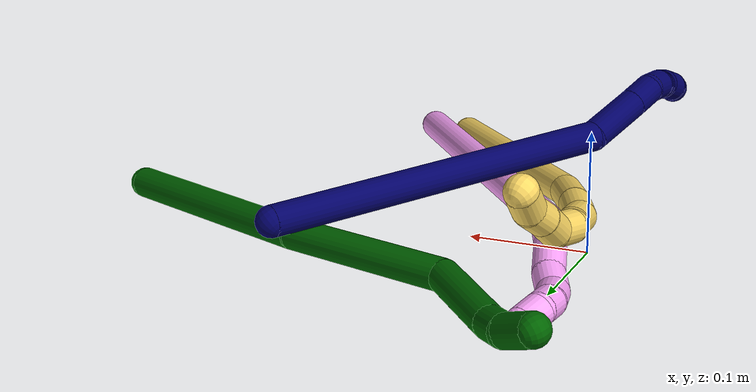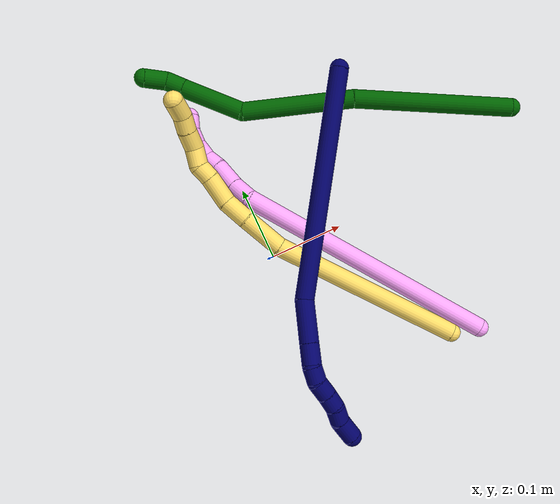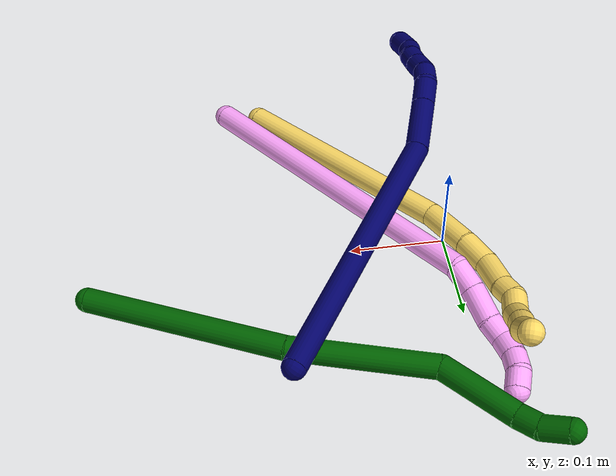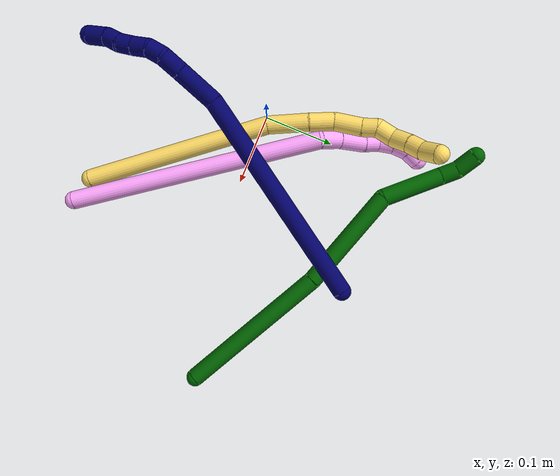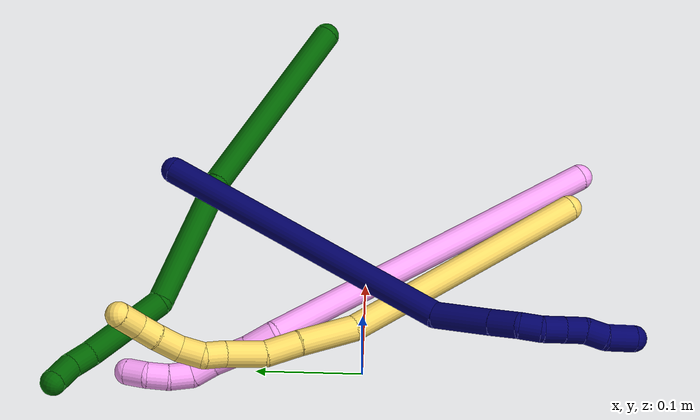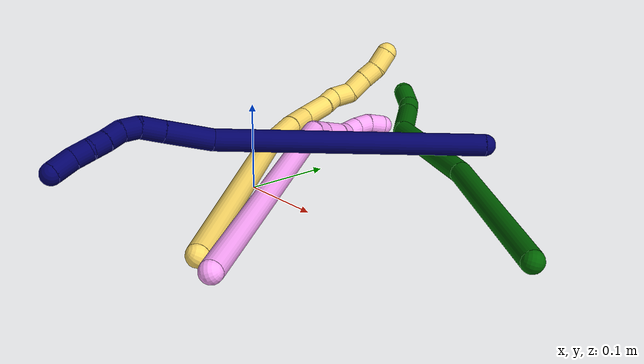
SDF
<sdf version="1.7">
 <world name="default">
  <model name="photoneo_s_sensor">
   <static>1</static>
   <pose>0 0 2 1.57079 1.57079 3.14159</pose>
   <link name="link">
    <inertial><mass>0.1</mass></inertial>
    <sensor name="sensor" type="depth">
     <update_rate>30</update_rate>
     <camera>
      <horizontal_fov>1.22</horizontal_fov>
      <image><width>1920</width><height>1200</height><format>B8G8R8</format></image>
      <clip><near>0.1</near><far>4</far></clip>
      <depth_camera><output>points</output></depth_camera>
     </camera>
     <plugin name="camera_plugin" filename="libgazebo_ros_depth_camera.so">
      <baseline>0.2</baseline>
      <alwaysOn>1</alwaysOn>
      <updateRate>0.0</updateRate>
      <cameraName>camera_ir</cameraName>
      <imageTopicName>/camera/color/image_raw</imageTopicName>
      <cameraInfoTopicName>/camera/color/camera_info</cameraInfoTopicName>
      <depthImageTopicName>/camera/depth/image_raw</depthImageTopicName>
      <depthImageCameraInfoTopicName>/camera/depth/camera_info</depthImageCameraInfoTopicName>
      <pointCloudTopicName>/camera/depth/points</pointCloudTopicName>
      <frameName>fr_optical</frameName>
      <pointCloudCutoff>0.1</pointCloudCutoff>
      <pointCloudCutoffMax>2.0</pointCloudCutoffMax>
      <distortionK1>0</distortionK1>
      <distortionK2>0</distortionK2>
      <distortionK3>0</distortionK3>
      <distortionT1>0</distortionT1>
      <distortionT2>0</distortionT2>
      <CxPrime>0</CxPrime>
      <Cx>0</Cx>
      <Cy>0</Cy>
      <focalLength>0</focalLength>
      <hackBaseline>0</hackBaseline>
     </plugin>
    </sensor>
   </link>
  </model>
  <model name="bin">
   <static>1</static>
   <link name="bottom">
    <collision name="collision-bottom">
     <pose>0 0 -0.01 0 -0 0</pose>
     <geometry><box><size>0.8 0.6 0.02</size></box></geometry>
     <surface>
      <friction><ode><mu>100</mu><mu2>100</mu2></ode></friction>
      <contact><collide_bitmask>65535</collide_bitmask></contact>
     </surface>
    </collision>
   </link>
   <link name="west_wall">
    <collision name="collision-west_wall">
     <pose>-0.41 0 0.1 0 -0 0</pose>
     <geometry><box><size>0.02 0.6 0.2</size></box></geometry>
     <surface>
      <friction><ode><mu>100</mu><mu2>100</mu2></ode></friction>
      <contact><collide_bitmask>65535</collide_bitmask></contact>
     </surface>
    </collision>
   </link>
   <link name="east_wall">
    <collision name="collision-east_wall">
     <pose>0.41 0 0.1 0 -0 0</pose>
     <geometry><box><size>0.02 0.6 0.2</size></box></geometry>
     <surface>
      <friction><ode><mu>100</mu><mu2>100</mu2></ode></friction>
      <contact><collide_bitmask>65535</collide_bitmask></contact>
     </surface>
    </collision>
   </link>
   <link name="south_wall">
    <collision name="collision-south_wall">
     <pose>0 -0.31 0.1 0 -0 0</pose>
     <geometry><box><size>0.8 0.02 0.2</size></box></geometry>
     <surface>
      <friction><ode><mu>100</mu><mu2>100</mu2></ode></friction>
      <contact><collide_bitmask>65535</collide_bitmask></contact>
     </surface>
    </collision>
   </link>
   <link name="north_wall">
    <collision name="collision-north_wall">
     <pose>0 0.31 0.1 0 -0 0</pose>
     <geometry><box><size>0.8 0.02 0.2</size></box></geometry>
     <surface>
      <friction><ode><mu>100</mu><mu2>100</mu2></ode></friction>
      <contact><collide_bitmask>65535</collide_bitmask></contact>
     </surface>
    </collision>
   </link>
  </model>
  <model name="4">
   <static>0</static>
   <link name="4">
    <collision name="collision-cylinder-e_1_1_4">
     <pose>-0.054827 0.166157 0.01275 -1.49421 -0.317851 0.294747</pose>
     <geometry><cylinder><radius>0.0125</radius><length>0.350865</length></cylinder></geometry>
     <surface>
      <friction><ode><mu>1.16</mu><mu2>1.16</mu2><slip1>0</slip1><slip2>0</slip2></ode></friction>
      <contact><ode><kp>1e+06</kp><kd>1</kd><max_vel>0</max_vel><min_depth>0.001</min_depth></ode></contact>
     </surface>
    </collision>
    <visual name="visual-cylinder-e_1_1_4">
     <pose>-0.054827 0.166157 0.01275 -1.49421 -0.317851 0.294747</pose>
     <geometry><cylinder><radius>0.0125</radius><length>0.350865</length></cylinder></geometry>
     <material><ambient>1 0.65098 0.996078 1</ambient></material>
    </visual>
    <collision name="collision-cylinder-e_2_4_5">
     <pose>-0.119314 0.342632 0.026192 -1.50378 -0.75132 0.706659</pose>
     <geometry><cylinder><radius>0.0125</radius><length>0.028303</length></cylinder></geometry>
     <surface>
      <friction><ode><mu>1.16</mu><mu2>1.16</mu2><slip1>0</slip1><slip2>0</slip2></ode></friction>
      <contact><ode><kp>1e+06</kp><kd>1</kd><max_vel>0</max_vel><min_depth>0.001</min_depth></ode></contact>
     </surface>
    </collision>
    <visual name="visual-cylinder-e_2_4_5">
     <pose>-0.119314 0.342632 0.026192 -1.50378 -0.75132 0.706659</pose>
     <geometry><cylinder><radius>0.0125</radius><length>0.028303</length></cylinder></geometry>
     <material><ambient>1 0.65098 0.996078 1</ambient></material>
    </visual>
    <collision name="collision-cylinder-e_3_5_6">
     <pose>-0.141827 0.365584 0.025256 -1.69898 -0.78986 0.885265</pose>
     <geometry><cylinder><radius>0.0125</radius><length>0.036192</length></cylinder></geometry>
     <surface>
      <friction><ode><mu>1.16</mu><mu2>1.16</mu2><slip1>0</slip1><slip2>0</slip2></ode></friction>
      <contact><ode><kp>1e+06</kp><kd>1</kd><max_vel>0</max_vel><min_depth>0.001</min_depth></ode></contact>
     </surface>
    </collision>
    <visual name="visual-cylinder-e_3_5_6">
     <pose>-0.141827 0.365584 0.025256 -1.69898 -0.78986 0.885265</pose>
     <geometry><cylinder><radius>0.0125</radius><length>0.036192</length></cylinder></geometry>
     <material><ambient>1 0.65098 0.996078 1</ambient></material>
    </visual>
    <collision name="collision-cylinder-e_4_6_7">
     <pose>-0.161712 0.386736 0.024265 -1.4961 -0.688771 0.642612</pose>
     <geometry><cylinder><radius>0.0125</radius><length>0.022127</length></cylinder></geometry>
     <surface>
      <friction><ode><mu>1.16</mu><mu2>1.16</mu2><slip1>0</slip1><slip2>0</slip2></ode></friction>
      <contact><ode><kp>1e+06</kp><kd>1</kd><max_vel>0</max_vel><min_depth>0.001</min_depth></ode></contact>
     </surface>
    </collision>
    <visual name="visual-cylinder-e_4_6_7">
     <pose>-0.161712 0.386736 0.024265 -1.4961 -0.688771 0.642612</pose>
     <geometry><cylinder><radius>0.0125</radius><length>0.022127</length></cylinder></geometry>
     <material><ambient>1 0.65098 0.996078 1</ambient></material>
    </visual>
    <collision name="collision-cylinder-e_5_7_8">
     <pose>-0.173424 0.404753 0.02148 -1.91657 -0.434087 0.608196</pose>
     <geometry><cylinder><radius>0.0125</radius><length>0.022258</length></cylinder></geometry>
     <surface>
      <friction><ode><mu>1.16</mu><mu2>1.16</mu2><slip1>0</slip1><slip2>0</slip2></ode></friction>
      <contact><ode><kp>1e+06</kp><kd>1</kd><max_vel>0</max_vel><min_depth>0.001</min_depth></ode></contact>
     </surface>
    </collision>
    <visual name="visual-cylinder-e_5_7_8">
     <pose>-0.173424 0.404753 0.02148 -1.91657 -0.434087 0.608196</pose>
     <geometry><cylinder><radius>0.0125</radius><length>0.022258</length></cylinder></geometry>
     <material><ambient>1 0.65098 0.996078 1</ambient></material>
    </visual>
    <collision name="collision-cylinder-e_6_8_9">
     <pose>-0.182752 0.421529 0.012871 -2.19004 -0.479521 0.886003</pose>
     <geometry><cylinder><radius>0.0125</radius><length>0.020145</length></cylinder></geometry>
     <surface>
      <friction><ode><mu>1.16</mu><mu2>1.16</mu2><slip1>0</slip1><slip2>0</slip2></ode></friction>
      <contact><ode><kp>1e+06</kp><kd>1</kd><max_vel>0</max_vel><min_depth>0.001</min_depth></ode></contact>
     </surface>
    </collision>
    <visual name="visual-cylinder-e_6_8_9">
     <pose>-0.182752 0.421529 0.012871 -2.19004 -0.479521 0.886003</pose>
     <geometry><cylinder><radius>0.0125</radius><length>0.020145</length></cylinder></geometry>
     <material><ambient>1 0.65098 0.996078 1</ambient></material>
    </visual>
    <collision name="collision-cylinder-e_7_9_2">
     <pose>-0.194313 0.432943 0.001669 -2.53924 -0.75828 1.81717</pose>
     <geometry><cylinder><radius>0.0125</radius><length>0.020109</length></cylinder></geometry>
     <surface>
      <friction><ode><mu>1.16</mu><mu2>1.16</mu2><slip1>0</slip1><slip2>0</slip2></ode></friction>
      <contact><ode><kp>1e+06</kp><kd>1</kd><max_vel>0</max_vel><min_depth>0.001</min_depth></ode></contact>
     </surface>
    </collision>
    <visual name="visual-cylinder-e_7_9_2">
     <pose>-0.194313 0.432943 0.001669 -2.53924 -0.75828 1.81717</pose>
     <geometry><cylinder><radius>0.0125</radius><length>0.020109</length></cylinder></geometry>
     <material><ambient>1 0.65098 0.996078 1</ambient></material>
    </visual>
    <collision name="collision-sphere-2">
     <pose>-0.201227 0.437079 -0.004346 0 -0 0</pose>
     <geometry><sphere><radius>0.0125</radius></sphere></geometry>
     <surface>
      <friction><ode><mu>1.16</mu><mu2>1.16</mu2><slip1>0</slip1><slip2>0</slip2></ode></friction>
      <contact><ode><kp>1e+06</kp><kd>1</kd><max_vel>0</max_vel><min_depth>0.001</min_depth></ode></contact>
     </surface>
    </collision>
    <visual name="visual-sphere-2">
     <pose>-0.201227 0.437079 -0.004346 0 -0 0</pose>
     <geometry><sphere><radius>0.0125</radius></sphere></geometry>
     <material><ambient>1 0.65098 0.996078 1</ambient></material>
    </visual>
    <collision name="collision-sphere-9">
     <pose>-0.187399 0.428807 0.007684 0 -0 0</pose>
     <geometry><sphere><radius>0.0125</radius></sphere></geometry>
     <surface>
      <friction><ode><mu>1.16</mu><mu2>1.16</mu2><slip1>0</slip1><slip2>0</slip2></ode></friction>
      <contact><ode><kp>1e+06</kp><kd>1</kd><max_vel>0</max_vel><min_depth>0.001</min_depth></ode></contact>
     </surface>
    </collision>
    <visual name="visual-sphere-9">
     <pose>-0.187399 0.428807 0.007684 0 -0 0</pose>
     <geometry><sphere><radius>0.0125</radius></sphere></geometry>
     <material><ambient>1 0.65098 0.996078 1</ambient></material>
    </visual>
    <collision name="collision-sphere-4">
     <pose>-0.109654 0.332313 0.025499 0 -0 0</pose>
     <geometry><sphere><radius>0.0125</radius></sphere></geometry>
     <surface>
      <friction><ode><mu>1.16</mu><mu2>1.16</mu2><slip1>0</slip1><slip2>0</slip2></ode></friction>
      <contact><ode><kp>1e+06</kp><kd>1</kd><max_vel>0</max_vel><min_depth>0.001</min_depth></ode></contact>
     </surface>
    </collision>
    <visual name="visual-sphere-4">
     <pose>-0.109654 0.332313 0.025499 0 -0 0</pose>
     <geometry><sphere><radius>0.0125</radius></sphere></geometry>
     <material><ambient>1 0.65098 0.996078 1</ambient></material>
    </visual>
    <collision name="collision-sphere-1">
     <geometry><sphere><radius>0.0125</radius></sphere></geometry>
     <surface>
      <friction><ode><mu>1.16</mu><mu2>1.16</mu2><slip1>0</slip1><slip2>0</slip2></ode></friction>
      <contact><ode><kp>1e+06</kp><kd>1</kd><max_vel>0</max_vel><min_depth>0.001</min_depth></ode></contact>
     </surface>
    </collision>
    <visual name="visual-sphere-1">
     <geometry><sphere><radius>0.0125</radius></sphere></geometry>
     <material><ambient>1 0.65098 0.996078 1</ambient></material>
    </visual>
    <collision name="collision-sphere-8">
     <pose>-0.178105 0.414252 0.018058 0 -0 0</pose>
     <geometry><sphere><radius>0.0125</radius></sphere></geometry>
     <surface>
      <friction><ode><mu>1.16</mu><mu2>1.16</mu2><slip1>0</slip1><slip2>0</slip2></ode></friction>
      <contact><ode><kp>1e+06</kp><kd>1</kd><max_vel>0</max_vel><min_depth>0.001</min_depth></ode></contact>
     </surface>
    </collision>
    <visual name="visual-sphere-8">
     <pose>-0.178105 0.414252 0.018058 0 -0 0</pose>
     <geometry><sphere><radius>0.0125</radius></sphere></geometry>
     <material><ambient>1 0.65098 0.996078 1</ambient></material>
    </visual>
    <collision name="collision-sphere-5">
     <pose>-0.128974 0.35295 0.026884 0 -0 0</pose>
     <geometry><sphere><radius>0.0125</radius></sphere></geometry>
     <surface>
      <friction><ode><mu>1.16</mu><mu2>1.16</mu2><slip1>0</slip1><slip2>0</slip2></ode></friction>
      <contact><ode><kp>1e+06</kp><kd>1</kd><max_vel>0</max_vel><min_depth>0.001</min_depth></ode></contact>
     </surface>
    </collision>
    <visual name="visual-sphere-5">
     <pose>-0.128974 0.35295 0.026884 0 -0 0</pose>
     <geometry><sphere><radius>0.0125</radius></sphere></geometry>
     <material><ambient>1 0.65098 0.996078 1</ambient></material>
    </visual>
    <collision name="collision-sphere-6">
     <pose>-0.15468 0.378219 0.023628 0 -0 0</pose>
     <geometry><sphere><radius>0.0125</radius></sphere></geometry>
     <surface>
      <friction><ode><mu>1.16</mu><mu2>1.16</mu2><slip1>0</slip1><slip2>0</slip2></ode></friction>
      <contact><ode><kp>1e+06</kp><kd>1</kd><max_vel>0</max_vel><min_depth>0.001</min_depth></ode></contact>
     </surface>
    </collision>
    <visual name="visual-sphere-6">
     <pose>-0.15468 0.378219 0.023628 0 -0 0</pose>
     <geometry><sphere><radius>0.0125</radius></sphere></geometry>
     <material><ambient>1 0.65098 0.996078 1</ambient></material>
    </visual>
    <collision name="collision-sphere-7">
     <pose>-0.168744 0.395254 0.024902 0 -0 0</pose>
     <geometry><sphere><radius>0.0125</radius></sphere></geometry>
     <surface>
      <friction><ode><mu>1.16</mu><mu2>1.16</mu2><slip1>0</slip1><slip2>0</slip2></ode></friction>
      <contact><ode><kp>1e+06</kp><kd>1</kd><max_vel>0</max_vel><min_depth>0.001</min_depth></ode></contact>
     </surface>
    </collision>
    <visual name="visual-sphere-7">
     <pose>-0.168744 0.395254 0.024902 0 -0 0</pose>
     <geometry><sphere><radius>0.0125</radius></sphere></geometry>
     <material><ambient>1 0.65098 0.996078 1</ambient></material>
    </visual>
    <inertial>
     <pose>-0.085549 0.231983 0.014873 0 -0 0</pose>
     <mass>0.5</mass>
     <inertia>
      <ixx>0.004281</ixx>
      <ixy>0</ixy>
      <ixz>0</ixz>
      <iyy>0.001636</iyy>
      <iyz>0</iyz>
      <izz>-0.002294</izz>
     </inertia>
    </inertial>
   </link>
   <pose>0.2126 -0.202061 0.029559 2.31997 -1.0227 -1.7227</pose>
  </model>
  <model name="5">
   <static>0</static>
   <link name="5">
    <collision name="collision-cylinder-e_1_1_4">
     <pose>-0.063066 0.097629 0.054524 -1.06146 -0.513518 0.305781</pose>
     <geometry><cylinder><radius>0.0125</radius><length>0.256761</length></cylinder></geometry>
     <surface>
      <friction><ode><mu>1.16</mu><mu2>1.16</mu2><slip1>0</slip1><slip2>0</slip2></ode></friction>
      <contact><ode><kp>1e+06</kp><kd>1</kd><max_vel>0</max_vel><min_depth>0.001</min_depth></ode></contact>
     </surface>
    </collision>
    <visual name="visual-cylinder-e_1_1_4">
     <pose>-0.063066 0.097629 0.054524 -1.06146 -0.513518 0.305781</pose>
     <geometry><cylinder><radius>0.0125</radius><length>0.256761</length></cylinder></geometry>
     <material><ambient>1 0.858824 0.4 1</ambient></material>
    </visual>
    <collision name="collision-cylinder-e_2_4_5">
     <pose>-0.142777 0.211762 0.124593 -0.815349 -0.633254 0.281137</pose>
     <geometry><cylinder><radius>0.0125</radius><length>0.056252</length></cylinder></geometry>
     <surface>
      <friction><ode><mu>1.16</mu><mu2>1.16</mu2><slip1>0</slip1><slip2>0</slip2></ode></friction>
      <contact><ode><kp>1e+06</kp><kd>1</kd><max_vel>0</max_vel><min_depth>0.001</min_depth></ode></contact>
     </surface>
    </collision>
    <visual name="visual-cylinder-e_2_4_5">
     <pose>-0.142777 0.211762 0.124593 -0.815349 -0.633254 0.281137</pose>
     <geometry><cylinder><radius>0.0125</radius><length>0.056252</length></cylinder></geometry>
     <material><ambient>1 0.858824 0.4 1</ambient></material>
    </visual>
    <collision name="collision-cylinder-e_3_5_6">
     <pose>-0.168007 0.238383 0.150657 -0.76586 -0.531795 0.218536</pose>
     <geometry><cylinder><radius>0.0125</radius><length>0.033864</length></cylinder></geometry>
     <surface>
      <friction><ode><mu>1.16</mu><mu2>1.16</mu2><slip1>0</slip1><slip2>0</slip2></ode></friction>
      <contact><ode><kp>1e+06</kp><kd>1</kd><max_vel>0</max_vel><min_depth>0.001</min_depth></ode></contact>
     </surface>
    </collision>
    <visual name="visual-cylinder-e_3_5_6">
     <pose>-0.168007 0.238383 0.150657 -0.76586 -0.531795 0.218536</pose>
     <geometry><cylinder><radius>0.0125</radius><length>0.033864</length></cylinder></geometry>
     <material><ambient>1 0.858824 0.4 1</ambient></material>
    </visual>
    <collision name="collision-cylinder-e_4_6_7">
     <pose>-0.189242 0.254898 0.173854 -0.467475 -0.727643 0.180821</pose>
     <geometry><cylinder><radius>0.0125</radius><length>0.038037</length></cylinder></geometry>
     <surface>
      <friction><ode><mu>1.16</mu><mu2>1.16</mu2><slip1>0</slip1><slip2>0</slip2></ode></friction>
      <contact><ode><kp>1e+06</kp><kd>1</kd><max_vel>0</max_vel><min_depth>0.001</min_depth></ode></contact>
     </surface>
    </collision>
    <visual name="visual-cylinder-e_4_6_7">
     <pose>-0.189242 0.254898 0.173854 -0.467475 -0.727643 0.180821</pose>
     <geometry><cylinder><radius>0.0125</radius><length>0.038037</length></cylinder></geometry>
     <material><ambient>1 0.858824 0.4 1</ambient></material>
    </visual>
    <collision name="collision-cylinder-e_5_7_8">
     <pose>-0.208978 0.265912 0.192187 -0.684332 -0.770656 0.286947</pose>
     <geometry><cylinder><radius>0.0125</radius><length>0.020344</length></cylinder></geometry>
     <surface>
      <friction><ode><mu>1.16</mu><mu2>1.16</mu2><slip1>0</slip1><slip2>0</slip2></ode></friction>
      <contact><ode><kp>1e+06</kp><kd>1</kd><max_vel>0</max_vel><min_depth>0.001</min_depth></ode></contact>
     </surface>
    </collision>
    <visual name="visual-cylinder-e_5_7_8">
     <pose>-0.208978 0.265912 0.192187 -0.684332 -0.770656 0.286947</pose>
     <geometry><cylinder><radius>0.0125</radius><length>0.020344</length></cylinder></geometry>
     <material><ambient>1 0.858824 0.4 1</ambient></material>
    </visual>
    <collision name="collision-cylinder-e_6_8_9">
     <pose>-0.223391 0.270553 0.207158 -0.003028 -0.666433 0.001048</pose>
     <geometry><cylinder><radius>0.0125</radius><length>0.023706</length></cylinder></geometry>
     <surface>
      <friction><ode><mu>1.16</mu><mu2>1.16</mu2><slip1>0</slip1><slip2>0</slip2></ode></friction>
      <contact><ode><kp>1e+06</kp><kd>1</kd><max_vel>0</max_vel><min_depth>0.001</min_depth></ode></contact>
     </surface>
    </collision>
    <visual name="visual-cylinder-e_6_8_9">
     <pose>-0.223391 0.270553 0.207158 -0.003028 -0.666433 0.001048</pose>
     <geometry><cylinder><radius>0.0125</radius><length>0.023706</length></cylinder></geometry>
     <material><ambient>1 0.858824 0.4 1</ambient></material>
    </visual>
    <collision name="collision-cylinder-e_7_9_10">
     <pose>-0.24231 0.270718 0.221625 -0.02658 -1.15263 0.017275</pose>
     <geometry><cylinder><radius>0.0125</radius><length>0.02537</length></cylinder></geometry>
     <surface>
      <friction><ode><mu>1.16</mu><mu2>1.16</mu2><slip1>0</slip1><slip2>0</slip2></ode></friction>
      <contact><ode><kp>1e+06</kp><kd>1</kd><max_vel>0</max_vel><min_depth>0.001</min_depth></ode></contact>
     </surface>
    </collision>
    <visual name="visual-cylinder-e_7_9_10">
     <pose>-0.24231 0.270718 0.221625 -0.02658 -1.15263 0.017275</pose>
     <geometry><cylinder><radius>0.0125</radius><length>0.02537</length></cylinder></geometry>
     <material><ambient>1 0.858824 0.4 1</ambient></material>
    </visual>
    <collision name="collision-cylinder-e_8_10_11">
     <pose>-0.263174 0.269966 0.231587 0.182699 -1.08506 -0.11034</pose>
     <geometry><cylinder><radius>0.0125</radius><length>0.02097</length></cylinder></geometry>
     <surface>
      <friction><ode><mu>1.16</mu><mu2>1.16</mu2><slip1>0</slip1><slip2>0</slip2></ode></friction>
      <contact><ode><kp>1e+06</kp><kd>1</kd><max_vel>0</max_vel><min_depth>0.001</min_depth></ode></contact>
     </surface>
    </collision>
    <visual name="visual-cylinder-e_8_10_11">
     <pose>-0.263174 0.269966 0.231587 0.182699 -1.08506 -0.11034</pose>
     <geometry><cylinder><radius>0.0125</radius><length>0.02097</length></cylinder></geometry>
     <material><ambient>1 0.858824 0.4 1</ambient></material>
    </visual>
    <collision name="collision-cylinder-e_9_11_2">
     <pose>-0.28452 0.269574 0.23894 -0.193368 -1.3597 0.15649</pose>
     <geometry><cylinder><radius>0.0125</radius><length>0.024696</length></cylinder></geometry>
     <surface>
      <friction><ode><mu>1.16</mu><mu2>1.16</mu2><slip1>0</slip1><slip2>0</slip2></ode></friction>
      <contact><ode><kp>1e+06</kp><kd>1</kd><max_vel>0</max_vel><min_depth>0.001</min_depth></ode></contact>
     </surface>
    </collision>
    <visual name="visual-cylinder-e_9_11_2">
     <pose>-0.28452 0.269574 0.23894 -0.193368 -1.3597 0.15649</pose>
     <geometry><cylinder><radius>0.0125</radius><length>0.024696</length></cylinder></geometry>
     <material><ambient>1 0.858824 0.4 1</ambient></material>
    </visual>
    <collision name="collision-sphere-2">
     <pose>-0.296594 0.270071 0.241479 0 -0 0</pose>
     <geometry><sphere><radius>0.0125</radius></sphere></geometry>
     <surface>
      <friction><ode><mu>1.16</mu><mu2>1.16</mu2><slip1>0</slip1><slip2>0</slip2></ode></friction>
      <contact><ode><kp>1e+06</kp><kd>1</kd><max_vel>0</max_vel><min_depth>0.001</min_depth></ode></contact>
     </surface>
    </collision>
    <visual name="visual-sphere-2">
     <pose>-0.296594 0.270071 0.241479 0 -0 0</pose>
     <geometry><sphere><radius>0.0125</radius></sphere></geometry>
     <material><ambient>1 0.858824 0.4 1</ambient></material>
    </visual>
    <collision name="collision-sphere-11">
     <pose>-0.272446 0.269077 0.236401 0 -0 0</pose>
     <geometry><sphere><radius>0.0125</radius></sphere></geometry>
     <surface>
      <friction><ode><mu>1.16</mu><mu2>1.16</mu2><slip1>0</slip1><slip2>0</slip2></ode></friction>
      <contact><ode><kp>1e+06</kp><kd>1</kd><max_vel>0</max_vel><min_depth>0.001</min_depth></ode></contact>
     </surface>
    </collision>
    <visual name="visual-sphere-11">
     <pose>-0.272446 0.269077 0.236401 0 -0 0</pose>
     <geometry><sphere><radius>0.0125</radius></sphere></geometry>
     <material><ambient>1 0.858824 0.4 1</ambient></material>
    </visual>
    <collision name="collision-sphere-10">
     <pose>-0.253902 0.270855 0.226774 0 -0 0</pose>
     <geometry><sphere><radius>0.0125</radius></sphere></geometry>
     <surface>
      <friction><ode><mu>1.16</mu><mu2>1.16</mu2><slip1>0</slip1><slip2>0</slip2></ode></friction>
      <contact><ode><kp>1e+06</kp><kd>1</kd><max_vel>0</max_vel><min_depth>0.001</min_depth></ode></contact>
     </surface>
    </collision>
    <visual name="visual-sphere-10">
     <pose>-0.253902 0.270855 0.226774 0 -0 0</pose>
     <geometry><sphere><radius>0.0125</radius></sphere></geometry>
     <material><ambient>1 0.858824 0.4 1</ambient></material>
    </visual>
    <collision name="collision-sphere-9">
     <pose>-0.230718 0.270581 0.216475 0 -0 0</pose>
     <geometry><sphere><radius>0.0125</radius></sphere></geometry>
     <surface>
      <friction><ode><mu>1.16</mu><mu2>1.16</mu2><slip1>0</slip1><slip2>0</slip2></ode></friction>
      <contact><ode><kp>1e+06</kp><kd>1</kd><max_vel>0</max_vel><min_depth>0.001</min_depth></ode></contact>
     </surface>
    </collision>
    <visual name="visual-sphere-9">
     <pose>-0.230718 0.270581 0.216475 0 -0 0</pose>
     <geometry><sphere><radius>0.0125</radius></sphere></geometry>
     <material><ambient>1 0.858824 0.4 1</ambient></material>
    </visual>
    <collision name="collision-sphere-4">
     <pose>-0.126133 0.195257 0.109048 0 -0 0</pose>
     <geometry><sphere><radius>0.0125</radius></sphere></geometry>
     <surface>
      <friction><ode><mu>1.16</mu><mu2>1.16</mu2><slip1>0</slip1><slip2>0</slip2></ode></friction>
      <contact><ode><kp>1e+06</kp><kd>1</kd><max_vel>0</max_vel><min_depth>0.001</min_depth></ode></contact>
     </surface>
    </collision>
    <visual name="visual-sphere-4">
     <pose>-0.126133 0.195257 0.109048 0 -0 0</pose>
     <geometry><sphere><radius>0.0125</radius></sphere></geometry>
     <material><ambient>1 0.858824 0.4 1</ambient></material>
    </visual>
    <collision name="collision-sphere-1">
     <geometry><sphere><radius>0.0125</radius></sphere></geometry>
     <surface>
      <friction><ode><mu>1.16</mu><mu2>1.16</mu2><slip1>0</slip1><slip2>0</slip2></ode></friction>
      <contact><ode><kp>1e+06</kp><kd>1</kd><max_vel>0</max_vel><min_depth>0.001</min_depth></ode></contact>
     </surface>
    </collision>
    <visual name="visual-sphere-1">
     <geometry><sphere><radius>0.0125</radius></sphere></geometry>
     <material><ambient>1 0.858824 0.4 1</ambient></material>
    </visual>
    <collision name="collision-sphere-8">
     <pose>-0.216064 0.270525 0.197842 0 -0 0</pose>
     <geometry><sphere><radius>0.0125</radius></sphere></geometry>
     <surface>
      <friction><ode><mu>1.16</mu><mu2>1.16</mu2><slip1>0</slip1><slip2>0</slip2></ode></friction>
      <contact><ode><kp>1e+06</kp><kd>1</kd><max_vel>0</max_vel><min_depth>0.001</min_depth></ode></contact>
     </surface>
    </collision>
    <visual name="visual-sphere-8">
     <pose>-0.216064 0.270525 0.197842 0 -0 0</pose>
     <geometry><sphere><radius>0.0125</radius></sphere></geometry>
     <material><ambient>1 0.858824 0.4 1</ambient></material>
    </visual>
    <collision name="collision-sphere-5">
     <pose>-0.159421 0.228267 0.140138 0 -0 0</pose>
     <geometry><sphere><radius>0.0125</radius></sphere></geometry>
     <surface>
      <friction><ode><mu>1.16</mu><mu2>1.16</mu2><slip1>0</slip1><slip2>0</slip2></ode></friction>
      <contact><ode><kp>1e+06</kp><kd>1</kd><max_vel>0</max_vel><min_depth>0.001</min_depth></ode></contact>
     </surface>
    </collision>
    <visual name="visual-sphere-5">
     <pose>-0.159421 0.228267 0.140138 0 -0 0</pose>
     <geometry><sphere><radius>0.0125</radius></sphere></geometry>
     <material><ambient>1 0.858824 0.4 1</ambient></material>
    </visual>
    <collision name="collision-sphere-6">
     <pose>-0.176593 0.248498 0.161175 0 -0 0</pose>
     <geometry><sphere><radius>0.0125</radius></sphere></geometry>
     <surface>
      <friction><ode><mu>1.16</mu><mu2>1.16</mu2><slip1>0</slip1><slip2>0</slip2></ode></friction>
      <contact><ode><kp>1e+06</kp><kd>1</kd><max_vel>0</max_vel><min_depth>0.001</min_depth></ode></contact>
     </surface>
    </collision>
    <visual name="visual-sphere-6">
     <pose>-0.176593 0.248498 0.161175 0 -0 0</pose>
     <geometry><sphere><radius>0.0125</radius></sphere></geometry>
     <material><ambient>1 0.858824 0.4 1</ambient></material>
    </visual>
    <collision name="collision-sphere-7">
     <pose>-0.201892 0.261298 0.186532 0 -0 0</pose>
     <geometry><sphere><radius>0.0125</radius></sphere></geometry>
     <surface>
      <friction><ode><mu>1.16</mu><mu2>1.16</mu2><slip1>0</slip1><slip2>0</slip2></ode></friction>
      <contact><ode><kp>1e+06</kp><kd>1</kd><max_vel>0</max_vel><min_depth>0.001</min_depth></ode></contact>
     </surface>
    </collision>
    <visual name="visual-sphere-7">
     <pose>-0.201892 0.261298 0.186532 0 -0 0</pose>
     <geometry><sphere><radius>0.0125</radius></sphere></geometry>
     <material><ambient>1 0.858824 0.4 1</ambient></material>
    </visual>
    <inertial>
     <pose>-0.130704 0.171515 0.115847 0 -0 0</pose>
     <mass>0.5</mass>
     <inertia>
      <ixx>0.001561</ixx>
      <ixy>0</ixy>
      <ixz>0</ixz>
      <iyy>0.001275</iyy>
      <iyz>0</iyz>
      <izz>-0.000355</izz>
     </inertia>
    </inertial>
   </link>
   <pose>0.175807 -0.192072 0.030025 -2.83078 1.02557 -1.54064</pose>
  </model>
  <model name="6">
   <static>0</static>
   <link name="6">
    <collision name="collision-cylinder-e_1_1_4">
     <pose>-0.099483 0.028886 -0.023954 -2.26312 -1.21009 1.94806</pose>
     <geometry><cylinder><radius>0.0125</radius><length>0.212651</length></cylinder></geometry>
     <surface>
      <friction><ode><mu>1.16</mu><mu2>1.16</mu2><slip1>0</slip1><slip2>0</slip2></ode></friction>
      <contact><ode><kp>1e+06</kp><kd>1</kd><max_vel>0</max_vel><min_depth>0.001</min_depth></ode></contact>
     </surface>
    </collision>
    <visual name="visual-cylinder-e_1_1_4">
     <pose>-0.099483 0.028886 -0.023954 -2.26312 -1.21009 1.94806</pose>
     <geometry><cylinder><radius>0.0125</radius><length>0.212651</length></cylinder></geometry>
     <material><ambient>0 0.392157 0.003922 1</ambient></material>
    </visual>
    <collision name="collision-cylinder-e_2_4_5">
     <pose>-0.263606 0.082597 -0.075255 -2.40451 -1.05169 1.96729</pose>
     <geometry><cylinder><radius>0.0125</radius><length>0.148894</length></cylinder></geometry>
     <surface>
      <friction><ode><mu>1.16</mu><mu2>1.16</mu2><slip1>0</slip1><slip2>0</slip2></ode></friction>
      <contact><ode><kp>1e+06</kp><kd>1</kd><max_vel>0</max_vel><min_depth>0.001</min_depth></ode></contact>
     </surface>
    </collision>
    <visual name="visual-cylinder-e_2_4_5">
     <pose>-0.263606 0.082597 -0.075255 -2.40451 -1.05169 1.96729</pose>
     <geometry><cylinder><radius>0.0125</radius><length>0.148894</length></cylinder></geometry>
     <material><ambient>0 0.392157 0.003922 1</ambient></material>
    </visual>
    <collision name="collision-cylinder-e_3_5_6">
     <pose>-0.368789 0.118754 -0.097367 -1.13807 -1.27211 0.8825</pose>
     <geometry><cylinder><radius>0.0125</radius><length>0.084844</length></cylinder></geometry>
     <surface>
      <friction><ode><mu>1.16</mu><mu2>1.16</mu2><slip1>0</slip1><slip2>0</slip2></ode></friction>
      <contact><ode><kp>1e+06</kp><kd>1</kd><max_vel>0</max_vel><min_depth>0.001</min_depth></ode></contact>
     </surface>
    </collision>
    <visual name="visual-cylinder-e_3_5_6">
     <pose>-0.368789 0.118754 -0.097367 -1.13807 -1.27211 0.8825</pose>
     <geometry><cylinder><radius>0.0125</radius><length>0.084844</length></cylinder></geometry>
     <material><ambient>0 0.392157 0.003922 1</ambient></material>
    </visual>
    <collision name="collision-cylinder-e_4_6_7">
     <pose>-0.421267 0.131434 -0.091261 -0.997216 -1.43712 0.88881</pose>
     <geometry><cylinder><radius>0.0125</radius><length>0.024083</length></cylinder></geometry>
     <surface>
      <friction><ode><mu>1.16</mu><mu2>1.16</mu2><slip1>0</slip1><slip2>0</slip2></ode></friction>
      <contact><ode><kp>1e+06</kp><kd>1</kd><max_vel>0</max_vel><min_depth>0.001</min_depth></ode></contact>
     </surface>
    </collision>
    <visual name="visual-cylinder-e_4_6_7">
     <pose>-0.421267 0.131434 -0.091261 -0.997216 -1.43712 0.88881</pose>
     <geometry><cylinder><radius>0.0125</radius><length>0.024083</length></cylinder></geometry>
     <material><ambient>0 0.392157 0.003922 1</ambient></material>
    </visual>
    <collision name="collision-cylinder-e_5_7_2">
     <pose>-0.447407 0.132681 -0.094409 3.11634 -1.29503 -3.10821</pose>
     <geometry><cylinder><radius>0.0125</radius><length>0.029528</length></cylinder></geometry>
     <surface>
      <friction><ode><mu>1.16</mu><mu2>1.16</mu2><slip1>0</slip1><slip2>0</slip2></ode></friction>
      <contact><ode><kp>1e+06</kp><kd>1</kd><max_vel>0</max_vel><min_depth>0.001</min_depth></ode></contact>
     </surface>
    </collision>
    <visual name="visual-cylinder-e_5_7_2">
     <pose>-0.447407 0.132681 -0.094409 3.11634 -1.29503 -3.10821</pose>
     <geometry><cylinder><radius>0.0125</radius><length>0.029528</length></cylinder></geometry>
     <material><ambient>0 0.392157 0.003922 1</ambient></material>
    </visual>
    <collision name="collision-sphere-2">
     <pose>-0.461613 0.132579 -0.098428 0 -0 0</pose>
     <geometry><sphere><radius>0.0125</radius></sphere></geometry>
     <surface>
      <friction><ode><mu>1.16</mu><mu2>1.16</mu2><slip1>0</slip1><slip2>0</slip2></ode></friction>
      <contact><ode><kp>1e+06</kp><kd>1</kd><max_vel>0</max_vel><min_depth>0.001</min_depth></ode></contact>
     </surface>
    </collision>
    <visual name="visual-sphere-2">
     <pose>-0.461613 0.132579 -0.098428 0 -0 0</pose>
     <geometry><sphere><radius>0.0125</radius></sphere></geometry>
     <material><ambient>0 0.392157 0.003922 1</ambient></material>
    </visual>
    <collision name="collision-sphere-7">
     <pose>-0.433201 0.132782 -0.09039 0 -0 0</pose>
     <geometry><sphere><radius>0.0125</radius></sphere></geometry>
     <surface>
      <friction><ode><mu>1.16</mu><mu2>1.16</mu2><slip1>0</slip1><slip2>0</slip2></ode></friction>
      <contact><ode><kp>1e+06</kp><kd>1</kd><max_vel>0</max_vel><min_depth>0.001</min_depth></ode></contact>
     </surface>
    </collision>
    <visual name="visual-sphere-7">
     <pose>-0.433201 0.132782 -0.09039 0 -0 0</pose>
     <geometry><sphere><radius>0.0125</radius></sphere></geometry>
     <material><ambient>0 0.392157 0.003922 1</ambient></material>
    </visual>
    <collision name="collision-sphere-6">
     <pose>-0.409333 0.130086 -0.092132 0 -0 0</pose>
     <geometry><sphere><radius>0.0125</radius></sphere></geometry>
     <surface>
      <friction><ode><mu>1.16</mu><mu2>1.16</mu2><slip1>0</slip1><slip2>0</slip2></ode></friction>
      <contact><ode><kp>1e+06</kp><kd>1</kd><max_vel>0</max_vel><min_depth>0.001</min_depth></ode></contact>
     </surface>
    </collision>
    <visual name="visual-sphere-6">
     <pose>-0.409333 0.130086 -0.092132 0 -0 0</pose>
     <geometry><sphere><radius>0.0125</radius></sphere></geometry>
     <material><ambient>0 0.392157 0.003922 1</ambient></material>
    </visual>
    <collision name="collision-sphere-5">
     <pose>-0.328246 0.107421 -0.102602 0 -0 0</pose>
     <geometry><sphere><radius>0.0125</radius></sphere></geometry>
     <surface>
      <friction><ode><mu>1.16</mu><mu2>1.16</mu2><slip1>0</slip1><slip2>0</slip2></ode></friction>
      <contact><ode><kp>1e+06</kp><kd>1</kd><max_vel>0</max_vel><min_depth>0.001</min_depth></ode></contact>
     </surface>
    </collision>
    <visual name="visual-sphere-5">
     <pose>-0.328246 0.107421 -0.102602 0 -0 0</pose>
     <geometry><sphere><radius>0.0125</radius></sphere></geometry>
     <material><ambient>0 0.392157 0.003922 1</ambient></material>
    </visual>
    <collision name="collision-sphere-1">
     <geometry><sphere><radius>0.0125</radius></sphere></geometry>
     <surface>
      <friction><ode><mu>1.16</mu><mu2>1.16</mu2><slip1>0</slip1><slip2>0</slip2></ode></friction>
      <contact><ode><kp>1e+06</kp><kd>1</kd><max_vel>0</max_vel><min_depth>0.001</min_depth></ode></contact>
     </surface>
    </collision>
    <visual name="visual-sphere-1">
     <geometry><sphere><radius>0.0125</radius></sphere></geometry>
     <material><ambient>0 0.392157 0.003922 1</ambient></material>
    </visual>
    <collision name="collision-sphere-4">
     <pose>-0.198966 0.057773 -0.047908 0 -0 0</pose>
     <geometry><sphere><radius>0.0125</radius></sphere></geometry>
     <surface>
      <friction><ode><mu>1.16</mu><mu2>1.16</mu2><slip1>0</slip1><slip2>0</slip2></ode></friction>
      <contact><ode><kp>1e+06</kp><kd>1</kd><max_vel>0</max_vel><min_depth>0.001</min_depth></ode></contact>
     </surface>
    </collision>
    <visual name="visual-sphere-4">
     <pose>-0.198966 0.057773 -0.047908 0 -0 0</pose>
     <geometry><sphere><radius>0.0125</radius></sphere></geometry>
     <material><ambient>0 0.392157 0.003922 1</ambient></material>
    </visual>
    <inertial>
     <pose>-0.230101 0.071199 -0.059091 0 -0 0</pose>
     <mass>0.5</mass>
     <inertia>
      <ixx>0.000221</ixx>
      <ixy>0</ixy>
      <ixz>0</ixz>
      <iyy>0.001437</iyy>
      <iyz>0</iyz>
      <izz>0.000722</izz>
     </inertia>
    </inertial>
   </link>
   <pose>0.377123 0.047649 0.025752 -1.86772 0.264242 -0.780584</pose>
  </model>
  <model name="7">
   <static>0</static>
   <link name="7">
    <collision name="collision-cylinder-e_1_1_4">
     <pose>-0.081173 -0.1247 -0.029831 1.80561 -0.564394 -0.704313</pose>
     <geometry><cylinder><radius>0.0125</radius><length>0.303507</length></cylinder></geometry>
     <surface>
      <friction><ode><mu>1.16</mu><mu2>1.16</mu2><slip1>0</slip1><slip2>0</slip2></ode></friction>
      <contact><ode><kp>1e+06</kp><kd>1</kd><max_vel>0</max_vel><min_depth>0.001</min_depth></ode></contact>
     </surface>
    </collision>
    <visual name="visual-cylinder-e_1_1_4">
     <pose>-0.081173 -0.1247 -0.029831 1.80561 -0.564394 -0.704313</pose>
     <geometry><cylinder><radius>0.0125</radius><length>0.303507</length></cylinder></geometry>
     <material><ambient>0.003922 0 0.403922 1</ambient></material>
    </visual>
    <collision name="collision-cylinder-e_2_4_5">
     <pose>-0.177837 -0.272998 -0.055237 1.38544 -0.57296 -0.479554</pose>
     <geometry><cylinder><radius>0.0125</radius><length>0.057145</length></cylinder></geometry>
     <surface>
      <friction><ode><mu>1.16</mu><mu2>1.16</mu2><slip1>0</slip1><slip2>0</slip2></ode></friction>
      <contact><ode><kp>1e+06</kp><kd>1</kd><max_vel>0</max_vel><min_depth>0.001</min_depth></ode></contact>
     </surface>
    </collision>
    <visual name="visual-cylinder-e_2_4_5">
     <pose>-0.177837 -0.272998 -0.055237 1.38544 -0.57296 -0.479554</pose>
     <geometry><cylinder><radius>0.0125</radius><length>0.057145</length></cylinder></geometry>
     <material><ambient>0.003922 0 0.403922 1</ambient></material>
    </visual>
    <collision name="collision-cylinder-e_3_5_6">
     <pose>-0.200858 -0.307983 -0.048427 1.36427 -0.574549 -0.471017</pose>
     <geometry><cylinder><radius>0.0125</radius><length>0.027719</length></cylinder></geometry>
     <surface>
      <friction><ode><mu>1.16</mu><mu2>1.16</mu2><slip1>0</slip1><slip2>0</slip2></ode></friction>
      <contact><ode><kp>1e+06</kp><kd>1</kd><max_vel>0</max_vel><min_depth>0.001</min_depth></ode></contact>
     </surface>
    </collision>
    <visual name="visual-cylinder-e_3_5_6">
     <pose>-0.200858 -0.307983 -0.048427 1.36427 -0.574549 -0.471017</pose>
     <geometry><cylinder><radius>0.0125</radius><length>0.027719</length></cylinder></geometry>
     <material><ambient>0.003922 0 0.403922 1</ambient></material>
    </visual>
    <collision name="collision-cylinder-e_4_6_7">
     <pose>-0.210518 -0.329501 -0.045144 1.48251 -0.206239 -0.188898</pose>
     <geometry><cylinder><radius>0.0125</radius><length>0.020782</length></cylinder></geometry>
     <surface>
      <friction><ode><mu>1.16</mu><mu2>1.16</mu2><slip1>0</slip1><slip2>0</slip2></ode></friction>
      <contact><ode><kp>1e+06</kp><kd>1</kd><max_vel>0</max_vel><min_depth>0.001</min_depth></ode></contact>
     </surface>
    </collision>
    <visual name="visual-cylinder-e_4_6_7">
     <pose>-0.210518 -0.329501 -0.045144 1.48251 -0.206239 -0.188898</pose>
     <geometry><cylinder><radius>0.0125</radius><length>0.020782</length></cylinder></geometry>
     <material><ambient>0.003922 0 0.403922 1</ambient></material>
    </visual>
    <collision name="collision-cylinder-e_5_7_8">
     <pose>-0.210874 -0.350247 -0.04249 1.40672 0.16327 0.138547</pose>
     <geometry><cylinder><radius>0.0125</radius><length>0.021809</length></cylinder></geometry>
     <surface>
      <friction><ode><mu>1.16</mu><mu2>1.16</mu2><slip1>0</slip1><slip2>0</slip2></ode></friction>
      <contact><ode><kp>1e+06</kp><kd>1</kd><max_vel>0</max_vel><min_depth>0.001</min_depth></ode></contact>
     </surface>
    </collision>
    <visual name="visual-cylinder-e_5_7_8">
     <pose>-0.210874 -0.350247 -0.04249 1.40672 0.16327 0.138547</pose>
     <geometry><cylinder><radius>0.0125</radius><length>0.021809</length></cylinder></geometry>
     <material><ambient>0.003922 0 0.403922 1</ambient></material>
    </visual>
    <collision name="collision-cylinder-e_6_8_9">
     <pose>-0.20829 -0.37071 -0.038985 1.39518 0.080908 0.067826</pose>
     <geometry><cylinder><radius>0.0125</radius><length>0.020068</length></cylinder></geometry>
     <surface>
      <friction><ode><mu>1.16</mu><mu2>1.16</mu2><slip1>0</slip1><slip2>0</slip2></ode></friction>
      <contact><ode><kp>1e+06</kp><kd>1</kd><max_vel>0</max_vel><min_depth>0.001</min_depth></ode></contact>
     </surface>
    </collision>
    <visual name="visual-cylinder-e_6_8_9">
     <pose>-0.20829 -0.37071 -0.038985 1.39518 0.080908 0.067826</pose>
     <geometry><cylinder><radius>0.0125</radius><length>0.020068</length></cylinder></geometry>
     <material><ambient>0.003922 0 0.403922 1</ambient></material>
    </visual>
    <collision name="collision-cylinder-e_7_9_10">
     <pose>-0.20731 -0.390917 -0.038301 1.67307 0.016221 0.017971</pose>
     <geometry><cylinder><radius>0.0125</radius><length>0.020831</length></cylinder></geometry>
     <surface>
      <friction><ode><mu>1.16</mu><mu2>1.16</mu2><slip1>0</slip1><slip2>0</slip2></ode></friction>
      <contact><ode><kp>1e+06</kp><kd>1</kd><max_vel>0</max_vel><min_depth>0.001</min_depth></ode></contact>
     </surface>
    </collision>
    <visual name="visual-cylinder-e_7_9_10">
     <pose>-0.20731 -0.390917 -0.038301 1.67307 0.016221 0.017971</pose>
     <geometry><cylinder><radius>0.0125</radius><length>0.020831</length></cylinder></geometry>
     <material><ambient>0.003922 0 0.403922 1</ambient></material>
    </visual>
    <collision name="collision-cylinder-e_8_10_2">
     <pose>-0.204379 -0.414922 -0.037335 1.42314 0.197657 0.170574</pose>
     <geometry><cylinder><radius>0.0125</radius><length>0.028139</length></cylinder></geometry>
     <surface>
      <friction><ode><mu>1.16</mu><mu2>1.16</mu2><slip1>0</slip1><slip2>0</slip2></ode></friction>
      <contact><ode><kp>1e+06</kp><kd>1</kd><max_vel>0</max_vel><min_depth>0.001</min_depth></ode></contact>
     </surface>
    </collision>
    <visual name="visual-cylinder-e_8_10_2">
     <pose>-0.204379 -0.414922 -0.037335 1.42314 0.197657 0.170574</pose>
     <geometry><cylinder><radius>0.0125</radius><length>0.028139</length></cylinder></geometry>
     <material><ambient>0.003922 0 0.403922 1</ambient></material>
    </visual>
    <collision name="collision-sphere-2">
     <pose>-0.201616 -0.428568 -0.035305 0 -0 0</pose>
     <geometry><sphere><radius>0.0125</radius></sphere></geometry>
     <surface>
      <friction><ode><mu>1.16</mu><mu2>1.16</mu2><slip1>0</slip1><slip2>0</slip2></ode></friction>
      <contact><ode><kp>1e+06</kp><kd>1</kd><max_vel>0</max_vel><min_depth>0.001</min_depth></ode></contact>
     </surface>
    </collision>
    <visual name="visual-sphere-2">
     <pose>-0.201616 -0.428568 -0.035305 0 -0 0</pose>
     <geometry><sphere><radius>0.0125</radius></sphere></geometry>
     <material><ambient>0.003922 0 0.403922 1</ambient></material>
    </visual>
    <collision name="collision-sphere-10">
     <pose>-0.207141 -0.401277 -0.039364 0 -0 0</pose>
     <geometry><sphere><radius>0.0125</radius></sphere></geometry>
     <surface>
      <friction><ode><mu>1.16</mu><mu2>1.16</mu2><slip1>0</slip1><slip2>0</slip2></ode></friction>
      <contact><ode><kp>1e+06</kp><kd>1</kd><max_vel>0</max_vel><min_depth>0.001</min_depth></ode></contact>
     </surface>
    </collision>
    <visual name="visual-sphere-10">
     <pose>-0.207141 -0.401277 -0.039364 0 -0 0</pose>
     <geometry><sphere><radius>0.0125</radius></sphere></geometry>
     <material><ambient>0.003922 0 0.403922 1</ambient></material>
    </visual>
    <collision name="collision-sphere-9">
     <pose>-0.207479 -0.380557 -0.037238 0 -0 0</pose>
     <geometry><sphere><radius>0.0125</radius></sphere></geometry>
     <surface>
      <friction><ode><mu>1.16</mu><mu2>1.16</mu2><slip1>0</slip1><slip2>0</slip2></ode></friction>
      <contact><ode><kp>1e+06</kp><kd>1</kd><max_vel>0</max_vel><min_depth>0.001</min_depth></ode></contact>
     </surface>
    </collision>
    <visual name="visual-sphere-9">
     <pose>-0.207479 -0.380557 -0.037238 0 -0 0</pose>
     <geometry><sphere><radius>0.0125</radius></sphere></geometry>
     <material><ambient>0.003922 0 0.403922 1</ambient></material>
    </visual>
    <collision name="collision-sphere-4">
     <pose>-0.162347 -0.2494 -0.059662 0 -0 0</pose>
     <geometry><sphere><radius>0.0125</radius></sphere></geometry>
     <surface>
      <friction><ode><mu>1.16</mu><mu2>1.16</mu2><slip1>0</slip1><slip2>0</slip2></ode></friction>
      <contact><ode><kp>1e+06</kp><kd>1</kd><max_vel>0</max_vel><min_depth>0.001</min_depth></ode></contact>
     </surface>
    </collision>
    <visual name="visual-sphere-4">
     <pose>-0.162347 -0.2494 -0.059662 0 -0 0</pose>
     <geometry><sphere><radius>0.0125</radius></sphere></geometry>
     <material><ambient>0.003922 0 0.403922 1</ambient></material>
    </visual>
    <collision name="collision-sphere-1">
     <geometry><sphere><radius>0.0125</radius></sphere></geometry>
     <surface>
      <friction><ode><mu>1.16</mu><mu2>1.16</mu2><slip1>0</slip1><slip2>0</slip2></ode></friction>
      <contact><ode><kp>1e+06</kp><kd>1</kd><max_vel>0</max_vel><min_depth>0.001</min_depth></ode></contact>
     </surface>
    </collision>
    <visual name="visual-sphere-1">
     <geometry><sphere><radius>0.0125</radius></sphere></geometry>
     <material><ambient>0.003922 0 0.403922 1</ambient></material>
    </visual>
    <collision name="collision-sphere-8">
     <pose>-0.209101 -0.360862 -0.040733 0 -0 0</pose>
     <geometry><sphere><radius>0.0125</radius></sphere></geometry>
     <surface>
      <friction><ode><mu>1.16</mu><mu2>1.16</mu2><slip1>0</slip1><slip2>0</slip2></ode></friction>
      <contact><ode><kp>1e+06</kp><kd>1</kd><max_vel>0</max_vel><min_depth>0.001</min_depth></ode></contact>
     </surface>
    </collision>
    <visual name="visual-sphere-8">
     <pose>-0.209101 -0.360862 -0.040733 0 -0 0</pose>
     <geometry><sphere><radius>0.0125</radius></sphere></geometry>
     <material><ambient>0.003922 0 0.403922 1</ambient></material>
    </visual>
    <collision name="collision-sphere-5">
     <pose>-0.193326 -0.296596 -0.050813 0 -0 0</pose>
     <geometry><sphere><radius>0.0125</radius></sphere></geometry>
     <surface>
      <friction><ode><mu>1.16</mu><mu2>1.16</mu2><slip1>0</slip1><slip2>0</slip2></ode></friction>
      <contact><ode><kp>1e+06</kp><kd>1</kd><max_vel>0</max_vel><min_depth>0.001</min_depth></ode></contact>
     </surface>
    </collision>
    <visual name="visual-sphere-5">
     <pose>-0.193326 -0.296596 -0.050813 0 -0 0</pose>
     <geometry><sphere><radius>0.0125</radius></sphere></geometry>
     <material><ambient>0.003922 0 0.403922 1</ambient></material>
    </visual>
    <collision name="collision-sphere-6">
     <pose>-0.20839 -0.31937 -0.046041 0 -0 0</pose>
     <geometry><sphere><radius>0.0125</radius></sphere></geometry>
     <surface>
      <friction><ode><mu>1.16</mu><mu2>1.16</mu2><slip1>0</slip1><slip2>0</slip2></ode></friction>
      <contact><ode><kp>1e+06</kp><kd>1</kd><max_vel>0</max_vel><min_depth>0.001</min_depth></ode></contact>
     </surface>
    </collision>
    <visual name="visual-sphere-6">
     <pose>-0.20839 -0.31937 -0.046041 0 -0 0</pose>
     <geometry><sphere><radius>0.0125</radius></sphere></geometry>
     <material><ambient>0.003922 0 0.403922 1</ambient></material>
    </visual>
    <collision name="collision-sphere-7">
     <pose>-0.212646 -0.339632 -0.044248 0 -0 0</pose>
     <geometry><sphere><radius>0.0125</radius></sphere></geometry>
     <surface>
      <friction><ode><mu>1.16</mu><mu2>1.16</mu2><slip1>0</slip1><slip2>0</slip2></ode></friction>
      <contact><ode><kp>1e+06</kp><kd>1</kd><max_vel>0</max_vel><min_depth>0.001</min_depth></ode></contact>
     </surface>
    </collision>
    <visual name="visual-sphere-7">
     <pose>-0.212646 -0.339632 -0.044248 0 -0 0</pose>
     <geometry><sphere><radius>0.0125</radius></sphere></geometry>
     <material><ambient>0.003922 0 0.403922 1</ambient></material>
    </visual>
    <inertial>
     <pose>-0.12718 -0.207458 -0.036097 0 -0 0</pose>
     <mass>0.5</mass>
     <inertia>
      <ixx>0.000228</ixx>
      <ixy>0</ixy>
      <ixz>0</ixz>
      <iyy>-0.000939</iyy>
      <iyz>0</iyz>
      <izz>0.003211</izz>
     </inertia>
    </inertial>
   </link>
   <pose>0.18603 0.18583 0.060657 0.384433 0.816291 0.226171</pose>
  </model>
 </world>
</sdf>
